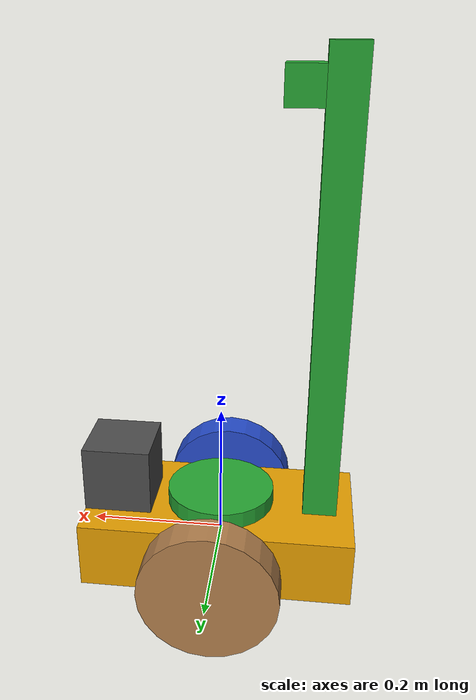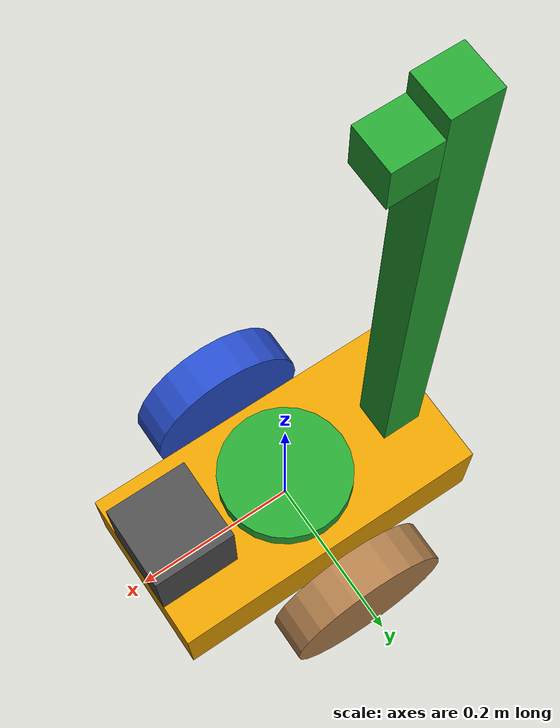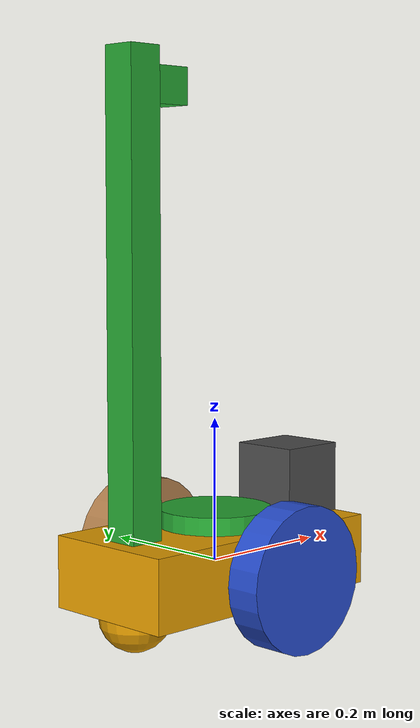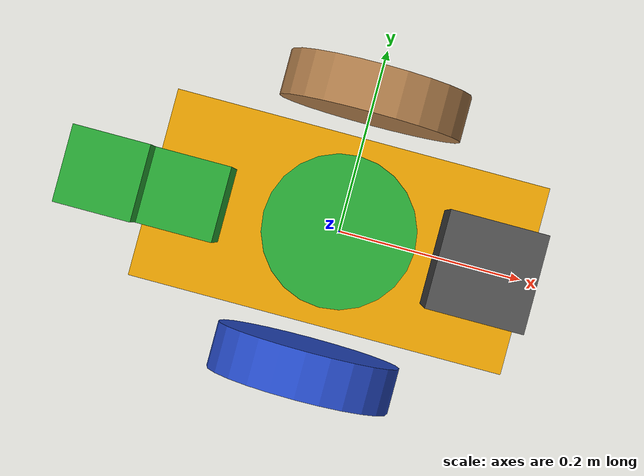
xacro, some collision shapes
<?xml version='1.0'?>

<robot name="myrobot" xmlns:xacro="http://www.ros.org/wiki/xacro">
  <xacro:property name="cameraSize" value="0.05"/>
  <xacro:property name="cameraMass" value="0.1"/>

  <xacro:include filename="$(find diff_drive_bot)/urdf/mybot.gazebo" />
  <xacro:include filename="$(find diff_drive_bot)/urdf/materials.xacro" />
  <xacro:include filename="$(find diff_drive_bot)/urdf/macros.xacro" />

    <link name='chassis'>
    <pose>0 0 0.1 0 0 0</pose>

    <inertial>
      <mass value="15.0"/>
      <origin xyz="0.0 0 0.1" rpy=" 0 0 0"/>
      <inertia
          ixx="0.1" ixy="0" ixz="0"
          iyy="0.1" iyz="0"
          izz="0.1"
      />
    </inertial>

    <collision name='collision'>
      <geometry>
        <box size=".4 .2 .1"/>
      </geometry>
    </collision>

    <visual name='chassis_visual'>
      <origin xyz="0 0 0" rpy=" 0 0 0"/>
      <geometry>
        <box size=".4 .2 .1"/>
      </geometry>
    </visual>

    <collision name='caster_collision'>
      <origin xyz="-0.15 0 -0.05" rpy=" 0 0 0"/>
      <geometry>
        <sphere radius="0.05"/>
      </geometry>
      <surface>
        <friction>
          <ode>
            <mu>0</mu>
            <mu2>0</mu2>
            <slip1>1.0</slip1>
            <slip2>1.0</slip2>
          </ode>
        </friction>
      </surface>
    </collision>

    <visual name='caster_visual'>
      <origin xyz="-0.15 0 -0.05" rpy=" 0 0 0"/>
      <geometry>
        <sphere radius="0.05"/>
      </geometry>
    </visual>

    <collision name='caster_front_collision'>
      <origin xyz="0.15 0 -0.05" rpy=" 0 0 0"/>
      <geometry>
        <sphere radius="0.05"/>
      </geometry>
      <surface>
        <friction>
          <ode>
            <mu>0</mu>
            <mu2>0</mu2>
            <slip1>1.0</slip1>
            <slip2>1.0</slip2>
          </ode>
        </friction>
      </surface>
    </collision>

    <visual name='caster_front_visual'>
      <origin xyz="0.15 0 -0.05" rpy=" 0 0 0"/>
      <geometry>
        <sphere radius="0.05"/>
      </geometry>
    </visual>

  </link>

  <link name="left_wheel">
    <!--origin xyz="0.1 0.13 0.1" rpy="0 1.5707 1.5707"/-->
    <collision name="collision">
      <origin xyz="0 0 0" rpy="0 1.5707 1.5707"/>
      <geometry>
        <cylinder radius="0.1" length="0.05"/>
      </geometry>
    </collision>
    <visual name="left_wheel_visual">
      <origin xyz="0 0 0" rpy="0 1.5707 1.5707"/>
      <geometry>
        <cylinder radius="0.1" length="0.05"/>
      </geometry>
    </visual>
    <inertial>
      <origin xyz="0 0 0" rpy="0 1.5707 1.5707"/>
      <mass value="5"/>
      <inertia
        ixx=".1" ixy="0.0" ixz="0.0"
        iyy=".1" iyz="0.0"
        izz=".1"/>
    </inertial>
  </link>

  <link name="right_wheel">
    <!--origin xyz="0.1 -0.13 0.1" rpy="0 1.5707 1.5707"/-->
    <collision name="collision">
      <origin xyz="0 0 0" rpy="0 1.5707 1.5707"/>
      <geometry>
        <cylinder radius="0.1" length="0.05"/>
      </geometry>
    </collision>
    <visual name="right_wheel_visual">
      <origin xyz="0 0 0" rpy="0 1.5707 1.5707"/>
      <geometry>
        <cylinder radius="0.1" length="0.05"/>
      </geometry>
    </visual>
    <inertial>
      <origin xyz="0 0 0" rpy="0 1.5707 1.5707"/>
      <mass value="5"/>
      <inertia
        ixx=".1" ixy="0.0" ixz="0.0"
        iyy=".1" iyz="0.0"
        izz=".1"/>
    </inertial>
  </link>

  <joint type="continuous" name="left_wheel_hinge">
    <origin xyz="0 0.15 0" rpy="0 0 0"/>
    <!--origin xyz="0.1 0.13 0" rpy="0 1.5707 1.5707"/-->
    <child link="left_wheel"/>
    <parent link="chassis"/>
    <axis xyz="0 1 0" rpy="0 0 0"/>
    <limit effort="10000" velocity="1000"/>
    <joint_properties damping="1.0" friction="1.0"/>
  </joint>

  <joint type="continuous" name="right_wheel_hinge">
    <origin xyz="0 -0.15 0" rpy="0 0 0"/>
    <!--origin xyz="0.1 -0.13 0" rpy="0 1.5707 1.5707"/-->
    <child link="right_wheel"/>
    <parent link="chassis"/>
    <axis xyz="0 1 0" rpy="0 0 0"/>
    <limit effort="10000" velocity="1000"/>
    <joint_properties damping="1.0" friction="1.0"/>
  </joint>

  <link name="shelf">
    <!--origin xyz="0.1 -0.13 0.1" rpy="0 1.5707 1.5707"/-->
    <collision name="collision">
      <origin xyz="0 0 0" rpy="0 0 0"/>
      <geometry>
        <cylinder radius="0.08" length="0.05"/>
      </geometry>
    </collision>
    <visual name="right_wheel_visual">
      <origin xyz="0 0 0" rpy="0 0 0"/>
      <geometry>
        <cylinder radius="0.08" length="0.05"/>
      </geometry>
    </visual>
    <inertial>
      <origin xyz="0 0 0" rpy="0 0 0"/>
      <mass value="0.1"/>
      <inertia
        ixx=".1" ixy="0.0" ixz="0.0"
        iyy=".1" iyz="0.0"
        izz=".1"/>
    </inertial>
  </link>
  <joint name="shelf_joint" type="fixed">
    <axis xyz="0 0 0" />
    <origin xyz="0 0 0.05" rpy="0 0 0"/>
    <parent link="chassis"/>
    <child link="shelf"/>
  </joint>
<link name="camerabase">
    <collision>
      <origin xyz="0 0 0.35" rpy="0 0 0"/>
      <geometry>
        <box size="${cameraSize} ${cameraSize} 0.7"/>
      </geometry>
    </collision>

    <visual>
      <origin xyz="0 0 0.35" rpy="0 0 0"/>
      <geometry>
        <box size="${cameraSize} ${cameraSize} 0.7"/>
      </geometry>
      <material name="green"/>
    </visual>

    <inertial>
      <mass value="0.1" />
      <origin xyz="0 0 0" rpy="0 0 0"/>
      <box_inertia m="${cameraMass}" x="${cameraSize}" y="${cameraSize}" z="${cameraSize}" />
      <inertia ixx="1e-6" ixy="0" ixz="0" iyy="1e-6" iyz="0" izz="1e-6" />
    </inertial>
  </link>

  <joint name="camerabase_joint" type="fixed">
    <axis xyz="0 1 0" />
    <origin xyz="-0.15 0 0" rpy="0 0 0"/>
    <parent link="chassis"/>
    <child link="camerabase"/>
  </joint>
<link name="camera">
    <collision>
      <origin xyz="0 0 0" rpy="0 0 0"/>
      <geometry>
        <box size="${cameraSize} ${cameraSize} ${cameraSize}"/>
      </geometry>
    </collision>

    <visual>
      <origin xyz="0 0 0" rpy="0 0 0"/>
      <geometry>
        <box size="${cameraSize} ${cameraSize} ${cameraSize}"/>
      </geometry>
      <material name="green"/>
    </visual>

    <inertial>
      <mass value="0.1" />
      <origin xyz="0 0 0" rpy="0 0 0"/>
      <box_inertia m="${cameraMass}" x="${cameraSize}" y="${cameraSize}" z="${cameraSize}" />
      <inertia ixx="1e-6" ixy="0" ixz="0" iyy="1e-6" iyz="0" izz="1e-6" />
    </inertial>
  </link>

  <joint name="camera_joint" type="fixed">
    <axis xyz="0 0 0.35" />
    <origin xyz="0.05 0 0.65" rpy="0 0 0"/>
    <parent link="camerabase"/>
    <child link="camera"/>
  </joint>

    <joint name="hokuyo_joint" type="fixed">
    <axis xyz="0 1 0" />
    <origin xyz=".15 0 .1" rpy="0 0 0"/>
    <parent link="chassis"/>
    <child link="hokuyo"/>
  </joint>

  <!-- Hokuyo Laser -->
  <link name="hokuyo">
    <collision>
      <origin xyz="0 0 0" rpy="0 0 0"/>
      <geometry>
    <box size="0.1 0.1 0.1"/>
      </geometry>
    </collision>

    <visual>
      <origin xyz="0 0 0" rpy="0 0 0"/>
      <geometry>
        <mesh filename="package://diff_drive_bot/meshes/hokuyo.dae"/>
      </geometry>
    </visual>

    <inertial>
      <mass value="1e-5" />
      <origin xyz="0 0 0" rpy="0 0 0"/>
      <inertia ixx="1e-6" ixy="0" ixz="0" iyy="1e-6" iyz="0" izz="1e-6" />
    </inertial>
  </link>

    <gazebo reference="chassis">
        <material>Gazebo/CoM</material>
    </gazebo>
    <gazebo reference="hokuyo">
        <material>Gazebo/Purple</material>
    </gazebo>
    <gazebo reference="camerabase">
        <material>Gazebo/GreenTransparent</material>
    </gazebo>
    <gazebo reference="left_wheel">
        <material>Gazebo/WoodFloor</material>
    </gazebo>
    <gazebo reference="right_wheel">
        <material>Gazebo/LightBlueLaser</material>
    </gazebo>
    <gazebo reference="hokuyo">
        <material>Gazebo/DarkGrey</material>
    </gazebo>
    <gazebo reference="camera">
        <material>Gazebo/Purple</material>
    </gazebo>
    <gazebo reference="shelf">
        <material>Gazebo/Green</material>
    </gazebo>

</robot>
